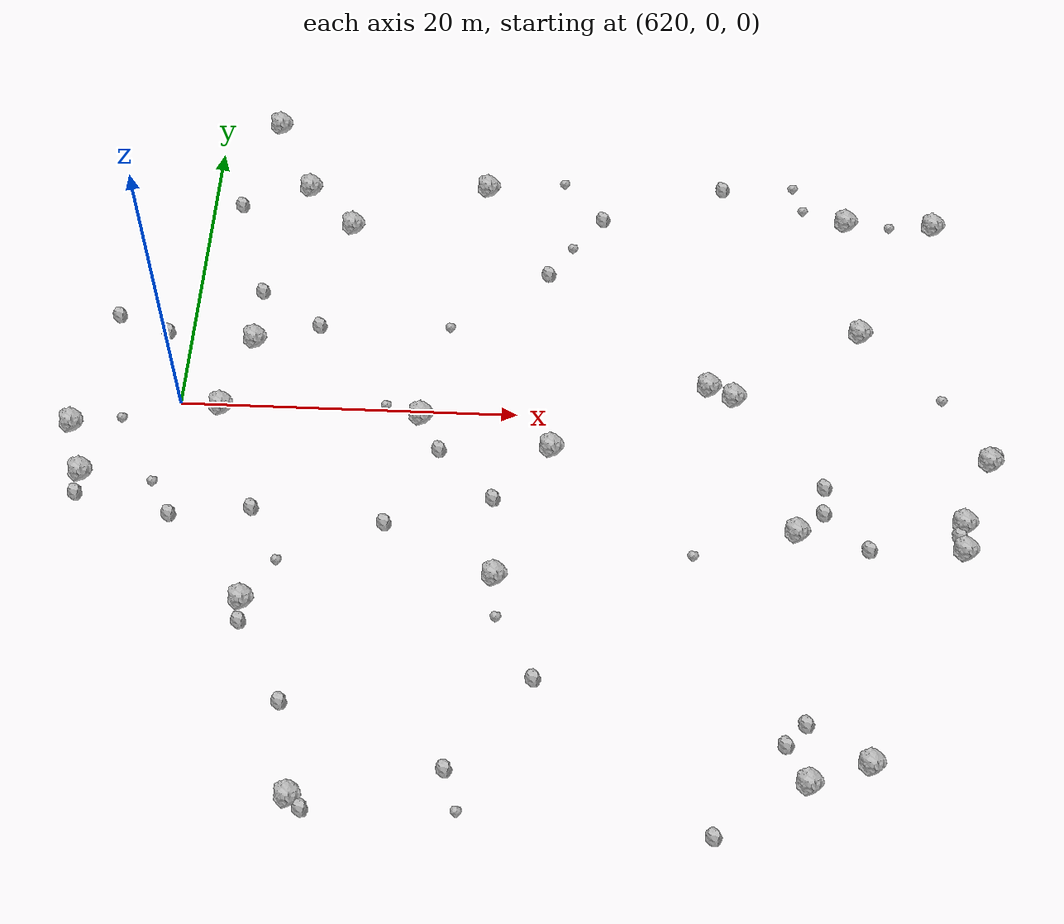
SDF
<sdf version="1.6">
 <world name="default">
  <include><uri>model://sun</uri></include>
  <model name="rock1_16_3">
   <include><uri>model://rock1</uri><pose>623.8505233763913 4.813841143336155 0.5 0 0 0</pose></include>
  </model>
  <model name="rock1_16_4">
   <include><uri>model://rock1</uri><pose>660.6141643848142 6.785820464332872 0.5 0 0 0</pose></include>
  </model>
  <model name="rock1_16_5">
   <include><uri>model://rock1</uri><pose>651.398895779781 2.348514756008335 0.5 0 0 0</pose></include>
  </model>
  <model name="rock1_16_6">
   <include><uri>model://rock1</uri><pose>625.2674038829554 -13.486809140572017 0.5 0 0 0</pose></include>
  </model>
  <model name="rock1_16_7">
   <include><uri>model://rock1</uri><pose>659.8622919003295 -22.096883396392382 0.5 0 0 0</pose></include>
  </model>
  <model name="rock1_16_8">
   <include><uri>model://rock1</uri><pose>625.9961017021803 17.206514549748178 0.5 0 0 0</pose></include>
  </model>
  <model name="rock1_16_9">
   <include><uri>model://rock1</uri><pose>656.5310332273635 -23.38001767772686 0.5 0 0 0</pose></include>
  </model>
  <model name="rock1_16_10">
   <include><uri>model://rock1</uri><pose>656.3595000285136 -7.7280942376033295 0.5 0 0 0</pose></include>
  </model>
  <model name="rock1_16_11">
   <include><uri>model://rock1</uri><pose>665.6028803682718 15.607744977511253 0.5 0 0 0</pose></include>
  </model>
  <model name="rock1_16_12">
   <include><uri>model://rock1</uri><pose>628.9865143129517 14.13286040233303 0.5 0 0 0</pose></include>
  </model>
  <model name="rock1_16_13">
   <include><uri>model://rock1</uri><pose>622.4279346335317 -0.2503516583080838 0.5 0 0 0</pose></include>
  </model>
  <model name="rock1_16_14">
   <include><uri>model://rock1</uri><pose>665.93988403034 -6.722847196731475 0.5 0 0 0</pose></include>
  </model>
  <model name="rock1_16_15">
   <include><uri>model://rock1</uri><pose>634.3639276233906 -0.47084882303640185 0.5 0 0 0</pose></include>
  </model>
  <model name="rock1_16_16">
   <include><uri>model://rock1</uri><pose>660.1183200145074 15.682876724685826 0.5 0 0 0</pose></include>
  </model>
  <model name="rock1_16_17">
   <include><uri>model://rock1</uri><pose>614.8738908781766 -5.331974480064574 0.5 0 0 0</pose></include>
  </model>
  <model name="rock1_16_18">
   <include><uri>model://rock1</uri><pose>665.8542641710766 -8.546931055128088 0.5 0 0 0</pose></include>
  </model>
  <model name="rock1_16_19">
   <include><uri>model://rock1</uri><pose>639.2849974783287 -11.328971907856392 0.5 0 0 0</pose></include>
  </model>
  <model name="rock1_16_20">
   <include><uri>model://rock1</uri><pose>642.1558370476748 -2.433214320439273 0.5 0 0 0</pose></include>
  </model>
  <model name="rock1_16_21">
   <include><uri>model://rock1</uri><pose>637.3915645178381 17.6407090682264 0.5 0 0 0</pose></include>
  </model>
  <model name="rock1_16_22">
   <include><uri>model://rock1</uri><pose>629.1808368095343 -25.28836699101298 0.5 0 0 0</pose></include>
  </model>
  <model name="rock1_16_23">
   <include><uri>model://rock1</uri><pose>667.7496125630258 -2.3586302503390115 0.5 0 0 0</pose></include>
  </model>
  <model name="rock1_16_24">
   <include><uri>model://rock1</uri><pose>623.4918564844812 22.56971630432519 0.5 0 0 0</pose></include>
  </model>
  <model name="rock1_16_25">
   <include><uri>model://rock1</uri><pose>613.7645049775147 -1.889280946488725 0.5 0 0 0</pose></include>
  </model>
  <model name="rock1_16_26">
   <include><uri>model://rock1</uri><pose>652.8838873922236 1.6445673729870194 0.5 0 0 0</pose></include>
  </model>
  <model name="rock2_16_0">
   <include><uri>model://rock2</uri><pose>621.7669681775702 15.602349171109218 0.3 0 0 0</pose></include>
  </model>
  <model name="rock2_16_1">
   <include><uri>model://rock2</uri><pose>635.5672226513186 -2.8186767954667395 0.3 0 0 0</pose></include>
  </model>
  <model name="rock2_16_2">
   <include><uri>model://rock2</uri><pose>627.6740061813331 6.071761507759717 0.3 0 0 0</pose></include>
  </model>
  <model name="rock2_16_3">
   <include><uri>model://rock2</uri><pose>641.7119596117491 -17.72445444766997 0.3 0 0 0</pose></include>
  </model>
  <model name="rock2_16_4">
   <include><uri>model://rock2</uri><pose>628.0848697357995 -19.720221152608726 0.3 0 0 0</pose></include>
  </model>
  <model name="rock2_16_5">
   <include><uri>model://rock2</uri><pose>660.4100234064299 -8.674484687425785 0.3 0 0 0</pose></include>
  </model>
  <model name="rock2_16_6">
   <include><uri>model://rock2</uri><pose>623.9055564822482 8.589055945114211 0.3 0 0 0</pose></include>
  </model>
  <model name="rock2_16_7">
   <include><uri>model://rock2</uri><pose>657.920716867494 -6.328134914596092 0.3 0 0 0</pose></include>
  </model>
  <model name="rock2_16_8">
   <include><uri>model://rock2</uri><pose>658.0101610049023 -4.54786605099158 0.3 0 0 0</pose></include>
  </model>
  <model name="rock2_16_9">
   <include><uri>model://rock2</uri><pose>638.9025967832915 -6.103223890312091 0.3 0 0 0</pose></include>
  </model>
  <model name="rock2_16_10">
   <include><uri>model://rock2</uri><pose>651.4627648592063 -26.610241540801645 0.3 0 0 0</pose></include>
  </model>
  <model name="rock2_16_11">
   <include><uri>model://rock2</uri><pose>615.3543768165982 6.335376709520723 0.3 0 0 0</pose></include>
  </model>
  <model name="rock2_16_12">
   <include><uri>model://rock2</uri><pose>614.780559266615 -6.744242810916031 0.3 0 0 0</pose></include>
  </model>
  <model name="rock2_16_13">
   <include><uri>model://rock2</uri><pose>632.7785127490247 -8.04179845990302 0.3 0 0 0</pose></include>
  </model>
  <model name="rock2_16_14">
   <include><uri>model://rock2</uri><pose>620.3886475410735 -7.960687531294873 0.3 0 0 0</pose></include>
  </model>
  <model name="rock2_16_15">
   <include><uri>model://rock2</uri><pose>637.2500789720118 -23.341764481784132 0.3 0 0 0</pose></include>
  </model>
  <model name="rock2_16_16">
   <include><uri>model://rock2</uri><pose>655.3453935030684 -21.165956213025794 0.3 0 0 0</pose></include>
  </model>
  <model name="rock2_16_17">
   <include><uri>model://rock2</uri><pose>652.3449517847486 18.233714776336633 0.3 0 0 0</pose></include>
  </model>
  <model name="rock2_16_18">
   <include><uri>model://rock2</uri><pose>629.8935113938942 -25.922403226433147 0.3 0 0 0</pose></include>
  </model>
  <model name="rock2_16_19">
   <include><uri>model://rock2</uri><pose>618.503257312345 5.2029391372768075 0.3 0 0 0</pose></include>
  </model>
  <model name="rock2_16_20">
   <include><uri>model://rock2</uri><pose>644.7475005823899 15.366199358874567 0.3 0 0 0</pose></include>
  </model>
  <model name="rock2_16_21">
   <include><uri>model://rock2</uri><pose>665.5827540891585 -7.538816312154488 0.3 0 0 0</pose></include>
  </model>
  <model name="rock2_16_22">
   <include><uri>model://rock2</uri><pose>625.066307609717 -7.339011312396483 0.3 0 0 0</pose></include>
  </model>
  <model name="rock2_16_23">
   <include><uri>model://rock2</uri><pose>668.0928677669966 -1.8590395217774471 0.3 0 0 0</pose></include>
  </model>
  <model name="rock2_16_24">
   <include><uri>model://rock2</uri><pose>641.4915832710778 10.730709760365308 0.3 0 0 0</pose></include>
  </model>
  <model name="rock2_16_25">
   <include><uri>model://rock2</uri><pose>625.2716959391565 -14.818923268349947 0.3 0 0 0</pose></include>
  </model>
  <model name="rock2_16_26">
   <include><uri>model://rock2</uri><pose>656.4745760116843 -19.880840977235426 0.3 0 0 0</pose></include>
  </model>
  <model name="rock3_16_0">
   <include><uri>model://rock3</uri><pose>662.84364225184 15.468236222590392 0.2 0 0 0</pose></include>
  </model>
  <model name="rock3_16_1">
   <include><uri>model://rock3</uri><pose>635.6444141895756 6.2836556455553705 0.2 0 0 0</pose></include>
  </model>
  <model name="rock3_16_2">
   <include><uri>model://rock3</uri><pose>642.9188811422578 12.921558116094843 0.2 0 0 0</pose></include>
  </model>
  <model name="rock3_16_3">
   <include><uri>model://rock3</uri><pose>639.4715349719172 -13.941540886946342 0.2 0 0 0</pose></include>
  </model>
  <model name="rock3_16_4">
   <include><uri>model://rock3</uri><pose>619.0933934520634 -5.761258210348256 0.2 0 0 0</pose></include>
  </model>
  <model name="rock3_16_5">
   <include><uri>model://rock3</uri><pose>665.2383771295239 2.0128721470674975 0.2 0 0 0</pose></include>
  </model>
  <model name="rock3_16_6">
   <include><uri>model://rock3</uri><pose>632.2170917859773 0.25852116635928724 0.2 0 0 0</pose></include>
  </model>
  <model name="rock3_16_7">
   <include><uri>model://rock3</uri><pose>650.4217171848468 -9.507883030530202 0.2 0 0 0</pose></include>
  </model>
  <model name="rock3_16_8">
   <include><uri>model://rock3</uri><pose>657.4332580476593 16.65562436294895 0.2 0 0 0</pose></include>
  </model>
  <model name="rock3_16_9">
   <include><uri>model://rock3</uri><pose>638.0276848423878 -25.76186574712352 0.2 0 0 0</pose></include>
  </model>
  <model name="rock3_16_10">
   <include><uri>model://rock3</uri><pose>626.8860400332874 -10.784833606721264 0.2 0 0 0</pose></include>
  </model>
  <model name="rock3_16_11">
   <include><uri>model://rock3</uri><pose>616.654305717211 -1.3305267427337526 0.2 0 0 0</pose></include>
  </model>
  <model name="rock3_16_12">
   <include><uri>model://rock3</uri><pose>642.237828752194 18.31117164284477 0.2 0 0 0</pose></include>
  </model>
  <model name="rock3_16_13">
   <include><uri>model://rock3</uri><pose>656.8481853100374 18.536358878760915 0.2 0 0 0</pose></include>
  </model>
 </world>
</sdf>
